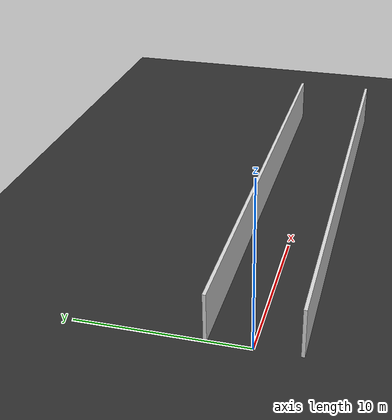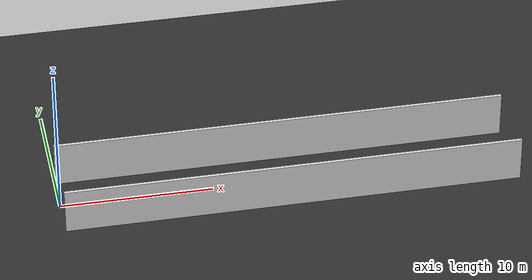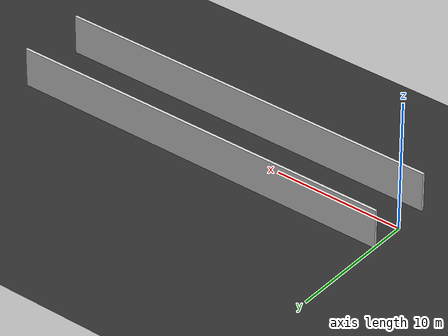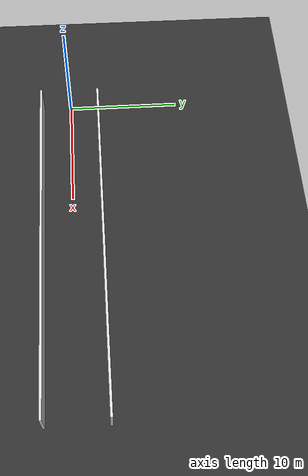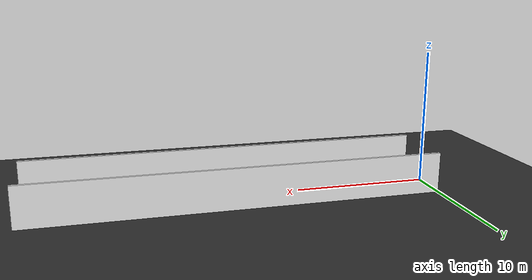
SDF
<?xml version="1.0"?>
<sdf version="1.9">

<world name="symmetric_corridor">

  <!-- Physics -->
  <physics name="default_physics" type="ignored">
    <max_step_size>0.001</max_step_size>
    <real_time_factor>1.0</real_time_factor>
    <real_time_update_rate>1000</real_time_update_rate>
  </physics>

  <plugin filename="libignition-gazebo-physics-system.so"
          name="ignition::gazebo::systems::Physics">
  </plugin>

  <plugin filename="libignition-gazebo-user-commands-system.so"
          name="ignition::gazebo::systems::UserCommands">
  </plugin>

  <plugin filename="libignition-gazebo-scene-broadcaster-system.so"
          name="ignition::gazebo::systems::SceneBroadcaster">
  </plugin>

  <plugin filename="libignition-gazebo-sensors-system.so"
          name="ignition::gazebo::systems::Sensors">
    <render_engine>ogre2</render_engine>
  </plugin>

  <gravity>0 0 -9.81</gravity>

  <scene>
    <ambient>0.4 0.4 0.4 1</ambient>
    <background>0.7 0.8 0.9 1</background>
    <shadows>true</shadows>
  </scene>

  <!-- Sun -->
  <light name="sun" type="directional">
    <cast_shadows>true</cast_shadows>
    <pose>0 0 20 0 0 0</pose>
    <diffuse>1 1 1 1</diffuse>
    <specular>0.2 0.2 0.2 1</specular>
    <direction>-0.5 0.2 -1</direction>
  </light>

  <!-- Ground -->
  <model name="ground">
    <static>true</static>

    <link name="ground_link">

      <collision name="collision">
        <geometry>
          <plane>
            <normal>0 0 1</normal>
            <size>100 100</size>
          </plane>
        </geometry>
      </collision>

      <visual name="visual">
        <geometry>
          <plane>
            <normal>0 0 1</normal>
            <size>100 100</size>
          </plane>
        </geometry>

        <!-- Dark Asphalt -->
        <material>
          <ambient>0.15 0.15 0.15 1</ambient>
          <diffuse>0.18 0.18 0.18 1</diffuse>
          <specular>0.03 0.03 0.03 1</specular>
        </material>
      </visual>

    </link>
  </model>

  <!-- LEFT WALL -->
  <model name="left_wall">
    <static>true</static>
    <pose>15 2.6 1.5 0 0 0</pose>

    <link name="wall">

      <collision name="collision">
        <geometry>
          <box>
            <size>30 0.2 3</size>
          </box>
        </geometry>
      </collision>

      <visual name="visual">
        <geometry>
          <box>
            <size>30 0.2 3</size>
          </box>
        </geometry>

        <!-- Light Gray Concrete -->
        <material>
          <ambient>0.82 0.82 0.82 1</ambient>
          <diffuse>0.85 0.85 0.85 1</diffuse>
          <specular>0.08 0.08 0.08 1</specular>
        </material>
      </visual>

    </link>
  </model>

  <!-- RIGHT WALL -->
  <model name="right_wall">
    <static>true</static>
    <pose>15 -2.6 1.5 0 0 0</pose>

    <link name="wall">

      <collision name="collision">
        <geometry>
          <box>
            <size>30 0.2 3</size>
          </box>
        </geometry>
      </collision>

      <visual name="visual">
        <geometry>
          <box>
            <size>30 0.2 3</size>
          </box>
        </geometry>

        <!-- Same Concrete Material -->
        <material>
          <ambient>0.82 0.82 0.82 1</ambient>
          <diffuse>0.85 0.85 0.85 1</diffuse>
          <specular>0.08 0.08 0.08 1</specular>
        </material>
      </visual>

    </link>
  </model>

</world>
</sdf>
